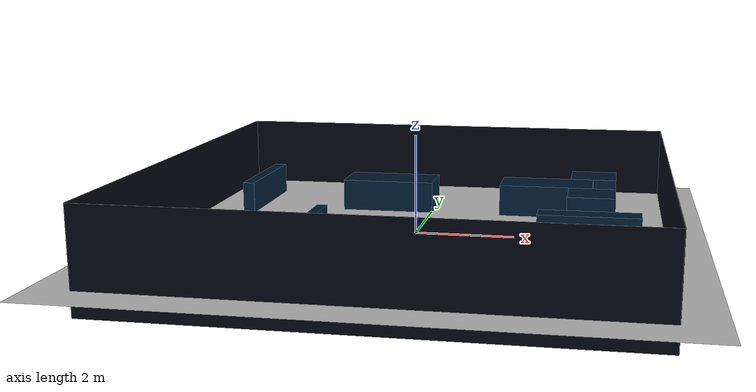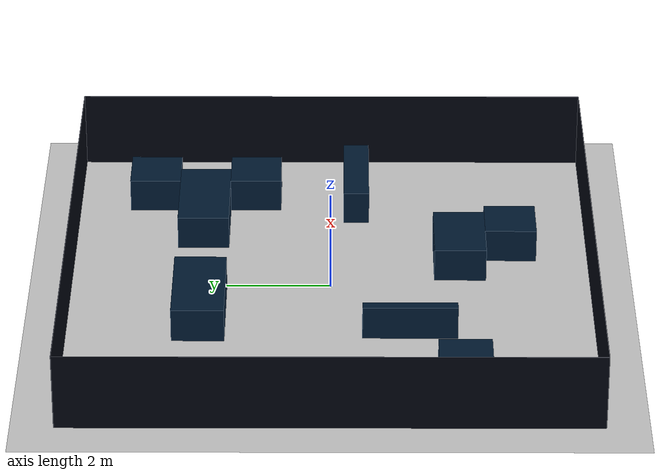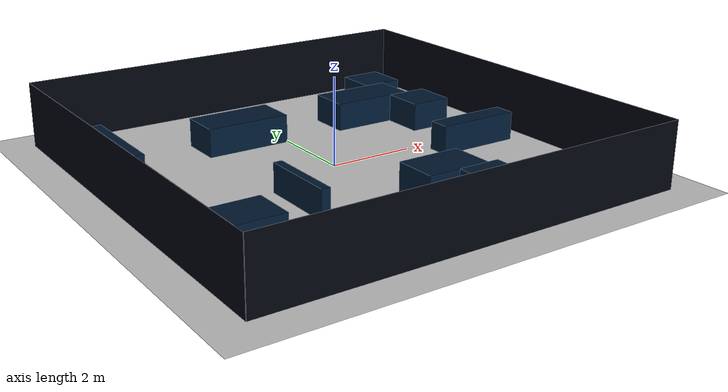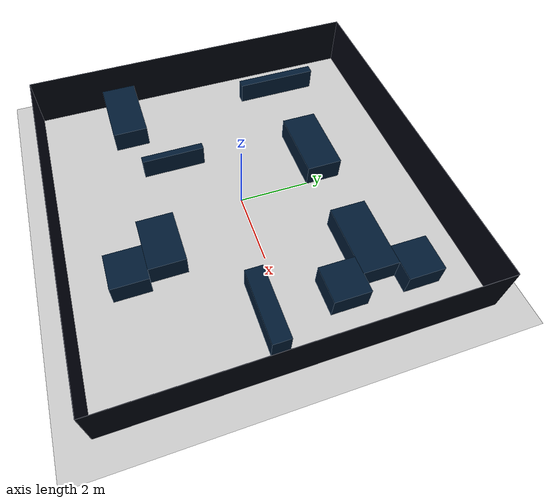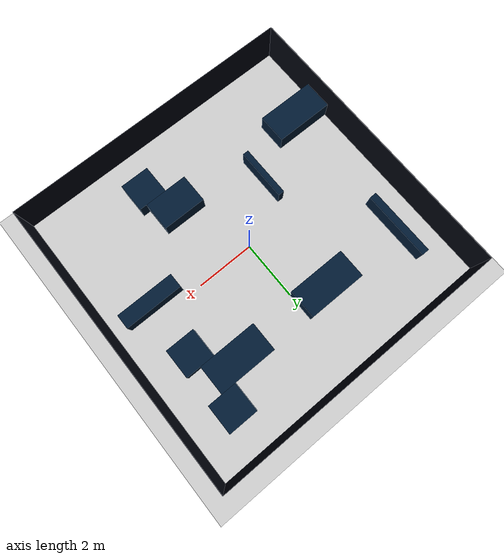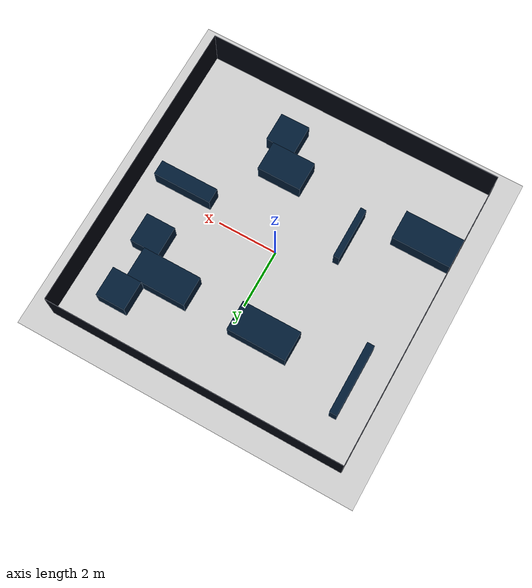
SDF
<?xml version="1.0"?>
<sdf version='1.8'>
    <world name='maze'>
        <physics name='1ms' type='ignored'>
            <max_step_size>0.003</max_step_size>
            <real_time_factor>1</real_time_factor>
            <real_time_update_rate>1000</real_time_update_rate>
        </physics>

        <plugin name="gz::sim::systems::Physics" filename="gz-sim-physics-system" />
        <plugin name="gz::sim::systems::UserCommands" filename="gz-sim-user-commands-system" />
        <plugin name="gz::sim::systems::SceneBroadcaster" filename="gz-sim-scene-broadcaster-system" />
        <plugin name="gz::sim::systems::Contact" filename="gz-sim-contact-system" />

        <light name='sun' type='directional'>
            <cast_shadows>1</cast_shadows>
            <pose>0 0 10 0 -0 0</pose>
            <diffuse>0.8 0.8 0.8 1</diffuse>
            <specular>0.2 0.2 0.2 1</specular>
            <attenuation>
                <range>1000</range>
                <constant>0.90000000000000002</constant>
                <linear>0.01</linear>
                <quadratic>0.001</quadratic>
            </attenuation>
            <direction>-0.5 0.1 -0.9</direction>
            <spot>
                <inner_angle>0</inner_angle>
                <outer_angle>0</outer_angle>
                <falloff>0</falloff>
            </spot>
        </light>
        <gravity>0 0 -9.8</gravity>
        <magnetic_field>6e-06 2.3e-05 -4.2e-05</magnetic_field>
        <atmosphere type='adiabatic' />
        <scene>
            <ambient>0.4 0.4 0.4 1</ambient>
            <background>0.7 0.7 0.7 1</background>
            <shadows>1</shadows>
        </scene>
        <model name='ground_plane'>
            <static>1</static>
            <link name='link'>
                <collision name='collision'>
                    <geometry>
                        <plane>
                            <normal>0 0 1</normal>
                            <size>100 100</size>
                        </plane>
                    </geometry>
                    <surface>
                        <friction>
                            <ode />
                        </friction>
                        <bounce />
                        <contact />
                    </surface>
                </collision>
                <visual name='visual'>
                    <geometry>
                        <plane>
                            <normal>0 0 1</normal>
                            <size>100 100</size>
                        </plane>
                    </geometry>
                    <material>
                        <ambient>0.8 0.8 0.8 1</ambient>
                        <diffuse>0.8 0.8 0.8 1</diffuse>
                        <specular>0.8 0.8 0.8 1</specular>
                    </material>
                    <plugin name='__default__' filename='__default__' />
                </visual>
            </link>
            <plugin name='__default__' filename='__default__' />
            <pose>0 0 0 0 -0 0</pose>
        </model>

        <model name='border'>
            <pose>0 0 0.5 0 0 0</pose>
            <static>true</static>
            <link name='wall1'>
                <pose>-5.005 0 0 0 0 0</pose>
                <static>true</static>
                <collision name='wall1_collision'>
                    <geometry>
                        <box>
                            <size>0.01 10 2</size>
                        </box>
                    </geometry>
                </collision>
                <visual name='wall1_visual'>
                    <geometry>
                        <box>
                            <size>0.01 10 2</size>
                        </box>
                    </geometry>
                    <material>
                        <ambient>0.1 0.1 0.1 1</ambient>
                        <diffuse>0 0.01 0.05 1</diffuse>
                        <specular>0 0.01 0.05 1</specular>
                    </material>
                </visual>
            </link>
            <link name='wall2'>
                <pose>5.005 0 0 0 0 0</pose>
                <static>true</static>
                <collision name='wall2_collision'>
                    <geometry>
                        <box>
                            <size>0.01 10 2</size>
                        </box>
                    </geometry>
                </collision>
                <visual name='wall2_visual'>
                    <geometry>
                        <box>
                            <size>0.01 10 2</size>
                        </box>
                    </geometry>
                    <material>
                        <ambient>0.1 0.1 0.1 1</ambient>
                        <diffuse>0 0.01 0.05 1</diffuse>
                        <specular>0 0.01 0.05 1</specular>
                    </material>
                </visual>
            </link>
            <link name='wall3'>
                <pose>0 5.005 0 0 0 0</pose>
                <static>true</static>
                <collision name='wall3_collision'>
                    <geometry>
                        <box>
                            <size>10 0.01 2</size>
                        </box>
                    </geometry>
                </collision>
                <visual name='wall3_visual'>
                    <geometry>
                        <box>
                            <size>10 0.01 2</size>
                        </box>
                    </geometry>
                    <material>
                        <ambient>0.1 0.1 0.1 1</ambient>
                        <diffuse>0 0.01 0.05 1</diffuse>
                        <specular>0 0.01 0.05 1</specular>
                    </material>
                </visual>
            </link>
            <link name='wall4'>
                <pose>0 -5.005 0 0 0 0</pose>
                <static>true</static>
                <collision name='wall4_collision'>
                    <geometry>
                        <box>
                            <size>10 0.01 2</size>
                        </box>
                    </geometry>
                    <material>
                        <ambient>0.1 0.1 0.1 1</ambient>
                        <diffuse>0 0.01 0.05 1</diffuse>
                        <specular>0 0.01 0.05 1</specular>
                    </material>
                </collision>
                <visual name='wall4_visual'>
                    <geometry>
                        <box>
                            <size>10 0.01 2</size>
                        </box>
                    </geometry>
                    <material>
                        <ambient>0.1 0.1 0.1 1</ambient>
                        <diffuse>0 0.01 0.05 1</diffuse>
                        <specular>0 0.01 0.05 1</specular>
                    </material>
                </visual>
            </link>
        </model>

        <model name='obstacles'>
            <pose>0 0 0.15 0 0 0</pose>
            <static>true</static>
            <link name='wall1'>
                <pose>-4 2.5 0 0 0 0</pose>
                <static>true</static>
                <collision name='wall1_collision'>
                    <geometry>
                        <box>
                            <size>0.25 2.4 1</size>
                        </box>
                    </geometry>
                </collision>
                <visual name='wall1_visual'>
                    <geometry>
                        <box>
                            <size>0.25 2.4 1</size>
                        </box>
                    </geometry>
                    <material>
                        <ambient>0.1 0.1 0.1 1</ambient>
                        <diffuse>0 0.1 0.2 1</diffuse>
                        <specular>0 0.01 0.05 1</specular>
                    </material>
                </visual>
            </link>

            <link name='wall2'>
                <pose>2.5 2.5 0 0 0 0</pose>
                <static>true</static>
                <collision name='wall2_collision'>
                    <geometry>
                        <box>
                            <size>2 1 1</size>
                        </box>
                    </geometry>
                </collision>
                <visual name='wall2_visual'>
                    <geometry>
                        <box>
                            <size>2 1 1</size>
                        </box>
                    </geometry>
                    <material>
                        <ambient>0.1 0.1 0.1 1</ambient>
                        <diffuse>0 0.1 0.2 1</diffuse>
                        <specular>0 0.01 0.05 1</specular>
                    </material>
                </visual>
            </link>

            <link name='wall3'>
                <pose>3.5 1.5 0 0 0 0</pose>
                <static>true</static>
                <collision name='wall3_collision'>
                    <geometry>
                        <box>
                            <size>1 1 1</size>
                        </box>
                    </geometry>
                </collision>
                <visual name='wall3_visual'>
                    <geometry>
                        <box>
                            <size>1 1 1</size>
                        </box>
                    </geometry>
                    <material>
                        <ambient>0.1 0.1 0.1 1</ambient>
                        <diffuse>0 0.1 0.2 1</diffuse>
                        <specular>0 0.01 0.05 1</specular>
                    </material>
                </visual>
            </link>

            <link name='wall4'>
                <pose>-1.8 -1.5 0 0 0 0</pose>
                <static>true</static>
                <collision name='wall4_collision'>
                    <geometry>
                        <box>
                            <size>0.2 1.8 1</size>
                        </box>
                    </geometry>
                </collision>
                <visual name='wall4_visual'>
                    <geometry>
                        <box>
                            <size>0.2 1.8 1</size>
                        </box>
                    </geometry>
                    <material>
                        <ambient>0.1 0.1 0.1 1</ambient>
                        <diffuse>0 0.1 0.2 1</diffuse>
                        <specular>0 0.01 0.05 1</specular>
                    </material>
                </visual>
            </link>

            <link name='wall5'>
                <pose>1 -2.5 0 0 0 0</pose>
                <static>true</static>
                <collision name='wall5_collision'>
                    <geometry>
                        <box>
                            <size>1.5 1 1</size>
                        </box>
                    </geometry>
                </collision>
                <visual name='wall5_visual'>
                    <geometry>
                        <box>
                            <size>1.5 1 1</size>
                        </box>
                    </geometry>
                    <material>
                        <ambient>0.1 0.1 0.1 1</ambient>
                        <diffuse>0 0.1 0.2 1</diffuse>
                        <specular>0 0.01 0.05 1</specular>
                    </material>
                </visual>
            </link>

            <link name='wall6'>
                <pose>1.5 -3.5 0 0 0 0</pose>
                <static>true</static>
                <collision name='wall6_collision'>
                    <geometry>
                        <box>
                            <size>1 1 1</size>
                        </box>
                    </geometry>
                </collision>
                <visual name='wall6_visual'>
                    <geometry>
                        <box>
                            <size>1 1 1</size>
                        </box>
                    </geometry>
                    <material>
                        <ambient>0.1 0.1 0.1 1</ambient>
                        <diffuse>0 0.1 0.2 1</diffuse>
                        <specular>0 0.01 0.05 1</specular>
                    </material>
                </visual>
            </link>

            <link name='wall7'>
                <pose>-4 -2.5 0 0 0 0</pose>
                <static>true</static>
                <collision name='wall7_collision'>
                    <geometry>
                        <box>
                            <size>2 1 1</size>
                        </box>
                    </geometry>
                </collision>
                <visual name='wall7_visual'>
                    <geometry>
                        <box>
                            <size>2 1 1</size>
                        </box>
                    </geometry>
                    <material>
                        <ambient>0.1 0.1 0.1 1</ambient>
                        <diffuse>0 0.1 0.2 1</diffuse>
                        <specular>0 0.01 0.05 1</specular>
                    </material>
                </visual>
            </link>

            <link name='wall8'>
                <pose>3.5 3.5 0 0 0 0</pose>
                <static>true</static>
                <collision name='wall8_collision'>
                    <geometry>
                        <box>
                            <size>1 1 1</size>
                        </box>
                    </geometry>
                </collision>
                <visual name='wall8_visual'>
                    <geometry>
                        <box>
                            <size>1 1 1</size>
                        </box>
                    </geometry>
                    <material>
                        <ambient>0.1 0.1 0.1 1</ambient>
                        <diffuse>0 0.1 0.2 1</diffuse>
                        <specular>0 0.01 0.05 1</specular>
                    </material>
                </visual>
            </link>

            <link name='wall9'>
                <pose>-1 2.5 0 0 0 0</pose>
                <static>true</static>
                <collision name='wall9_collision'>
                    <geometry>
                        <box>
                            <size>2 1 1</size>
                        </box>
                    </geometry>
                </collision>
                <visual name='wall9_visual'>
                    <geometry>
                        <box>
                            <size>2 1 1</size>
                        </box>
                    </geometry>
                    <material>
                        <ambient>0.1 0.1 0.1 1</ambient>
                        <diffuse>0 0.1 0.2 1</diffuse>
                        <specular>0 0.01 0.05 1</specular>
                    </material>
                </visual>
            </link>

            <link name='wall10'>
                <pose>3.5 -0.5 0 0 0 0</pose>
                <static>true</static>
                <collision name='wall10_collision'>
                    <geometry>
                        <box>
                            <size>2 0.5 1</size>
                        </box>
                    </geometry>
                </collision>
                <visual name='wall10_visual'>
                    <geometry>
                        <box>
                            <size>2 0.5 1</size>
                        </box>
                    </geometry>
                    <material>
                        <ambient>0.1 0.1 0.1 1</ambient>
                        <diffuse>0 0.1 0.2 1</diffuse>
                        <specular>0 0.01 0.05 1</specular>
                    </material>
                </visual>
            </link>
        </model>
    </world>
</sdf>
